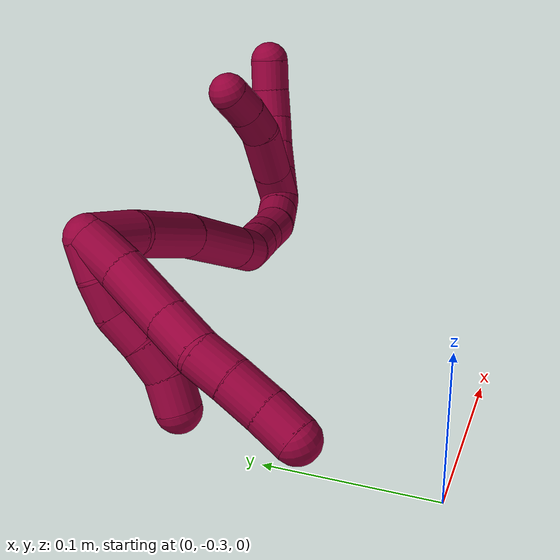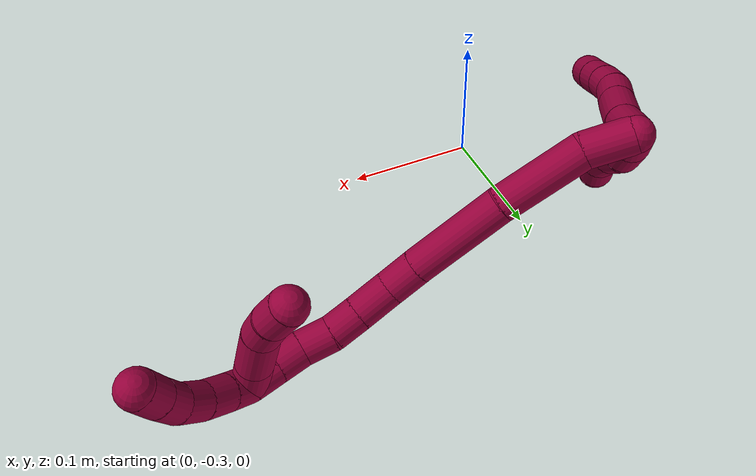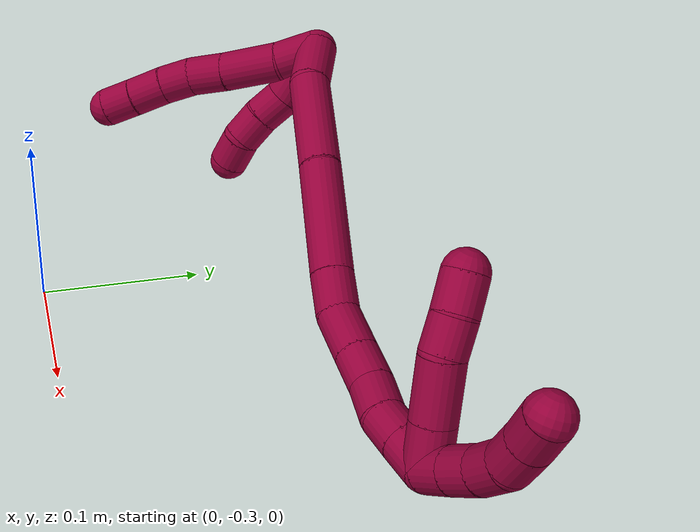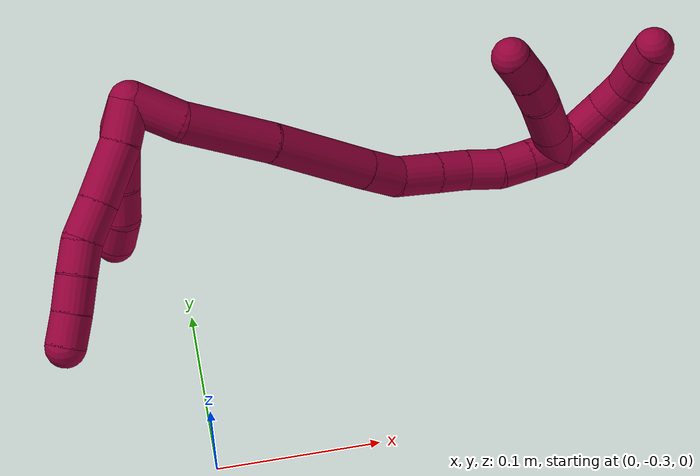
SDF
<sdf version="1.7">
 <world name="default">
  <model name="8">
   <static>0</static>
   <link name="8">
    <collision name="collision-cylinder-e_1_2_8">
     <pose>-0.006758 -0.007905 -0.007245 2.31271 -0.562379 -1.16197</pose>
     <geometry><cylinder><radius>0.0125</radius><length>0.02535</length></cylinder></geometry>
     <surface>
      <friction><ode><mu>1.16</mu><mu2>1.16</mu2><slip1>0</slip1><slip2>0</slip2></ode></friction>
      <contact><ode><kp>1e+06</kp><kd>1</kd><max_vel>0</max_vel><min_depth>0.001</min_depth></ode></contact>
     </surface>
    </collision>
    <visual name="visual-cylinder-e_1_2_8">
     <pose>-0.006758 -0.007905 -0.007245 2.31271 -0.562379 -1.16197</pose>
     <geometry><cylinder><radius>0.0125</radius><length>0.02535</length></cylinder></geometry>
     <material><ambient>0.584314 0 0.227451 1</ambient></material>
    </visual>
    <collision name="collision-cylinder-e_2_8_9">
     <pose>-0.025876 -0.026716 -0.023385 2.25489 -0.720658 -1.34143</pose>
     <geometry><cylinder><radius>0.0125</radius><length>0.037461</length></cylinder></geometry>
     <surface>
      <friction><ode><mu>1.16</mu><mu2>1.16</mu2><slip1>0</slip1><slip2>0</slip2></ode></friction>
      <contact><ode><kp>1e+06</kp><kd>1</kd><max_vel>0</max_vel><min_depth>0.001</min_depth></ode></contact>
     </surface>
    </collision>
    <visual name="visual-cylinder-e_2_8_9">
     <pose>-0.025876 -0.026716 -0.023385 2.25489 -0.720658 -1.34143</pose>
     <geometry><cylinder><radius>0.0125</radius><length>0.037461</length></cylinder></geometry>
     <material><ambient>0.584314 0 0.227451 1</ambient></material>
    </visual>
    <collision name="collision-cylinder-e_3_9_10">
     <pose>-0.046573 -0.044836 -0.037532 2.2003 -0.751439 -1.319</pose>
     <geometry><cylinder><radius>0.0125</radius><length>0.024423</length></cylinder></geometry>
     <surface>
      <friction><ode><mu>1.16</mu><mu2>1.16</mu2><slip1>0</slip1><slip2>0</slip2></ode></friction>
      <contact><ode><kp>1e+06</kp><kd>1</kd><max_vel>0</max_vel><min_depth>0.001</min_depth></ode></contact>
     </surface>
    </collision>
    <visual name="visual-cylinder-e_3_9_10">
     <pose>-0.046573 -0.044836 -0.037532 2.2003 -0.751439 -1.319</pose>
     <geometry><cylinder><radius>0.0125</radius><length>0.024423</length></cylinder></geometry>
     <material><ambient>0.584314 0 0.227451 1</ambient></material>
    </visual>
    <collision name="collision-cylinder-e_4_10_11">
     <pose>-0.059929 -0.05889 -0.048499 2.26655 -0.512824 -1.02176</pose>
     <geometry><cylinder><radius>0.0125</radius><length>0.02046</length></cylinder></geometry>
     <surface>
      <friction><ode><mu>1.16</mu><mu2>1.16</mu2><slip1>0</slip1><slip2>0</slip2></ode></friction>
      <contact><ode><kp>1e+06</kp><kd>1</kd><max_vel>0</max_vel><min_depth>0.001</min_depth></ode></contact>
     </surface>
    </collision>
    <visual name="visual-cylinder-e_4_10_11">
     <pose>-0.059929 -0.05889 -0.048499 2.26655 -0.512824 -1.02176</pose>
     <geometry><cylinder><radius>0.0125</radius><length>0.02046</length></cylinder></geometry>
     <material><ambient>0.584314 0 0.227451 1</ambient></material>
    </visual>
    <collision name="collision-cylinder-e_5_11_12">
     <pose>-0.070052 -0.072687 -0.061065 2.34877 -0.481702 -1.06132</pose>
     <geometry><cylinder><radius>0.0125</radius><length>0.022034</length></cylinder></geometry>
     <surface>
      <friction><ode><mu>1.16</mu><mu2>1.16</mu2><slip1>0</slip1><slip2>0</slip2></ode></friction>
      <contact><ode><kp>1e+06</kp><kd>1</kd><max_vel>0</max_vel><min_depth>0.001</min_depth></ode></contact>
     </surface>
    </collision>
    <visual name="visual-cylinder-e_5_11_12">
     <pose>-0.070052 -0.072687 -0.061065 2.34877 -0.481702 -1.06132</pose>
     <geometry><cylinder><radius>0.0125</radius><length>0.022034</length></cylinder></geometry>
     <material><ambient>0.584314 0 0.227451 1</ambient></material>
    </visual>
    <collision name="collision-cylinder-e_6_12_6">
     <pose>-0.080315 -0.085802 -0.074096 2.35772 -0.534008 -1.16925</pose>
     <geometry><cylinder><radius>0.0125</radius><length>0.020273</length></cylinder></geometry>
     <surface>
      <friction><ode><mu>1.16</mu><mu2>1.16</mu2><slip1>0</slip1><slip2>0</slip2></ode></friction>
      <contact><ode><kp>1e+06</kp><kd>1</kd><max_vel>0</max_vel><min_depth>0.001</min_depth></ode></contact>
     </surface>
    </collision>
    <visual name="visual-cylinder-e_6_12_6">
     <pose>-0.080315 -0.085802 -0.074096 2.35772 -0.534008 -1.16925</pose>
     <geometry><cylinder><radius>0.0125</radius><length>0.020273</length></cylinder></geometry>
     <material><ambient>0.584314 0 0.227451 1</ambient></material>
    </visual>
    <collision name="collision-cylinder-e_1_2_13">
     <pose>-0.004608 -0.000788 -0.00884 3.0527 -0.478851 -2.78115</pose>
     <geometry><cylinder><radius>0.0125</radius><length>0.02</length></cylinder></geometry>
     <surface>
      <friction><ode><mu>1.16</mu><mu2>1.16</mu2><slip1>0</slip1><slip2>0</slip2></ode></friction>
      <contact><ode><kp>1e+06</kp><kd>1</kd><max_vel>0</max_vel><min_depth>0.001</min_depth></ode></contact>
     </surface>
    </collision>
    <visual name="visual-cylinder-e_1_2_13">
     <pose>-0.004608 -0.000788 -0.00884 3.0527 -0.478851 -2.78115</pose>
     <geometry><cylinder><radius>0.0125</radius><length>0.02</length></cylinder></geometry>
     <material><ambient>0.584314 0 0.227451 1</ambient></material>
    </visual>
    <collision name="collision-cylinder-e_2_13_14">
     <pose>-0.012204 -0.002881 -0.027134 3.00441 -0.303514 -2.29717</pose>
     <geometry><cylinder><radius>0.0125</radius><length>0.02</length></cylinder></geometry>
     <surface>
      <friction><ode><mu>1.16</mu><mu2>1.16</mu2><slip1>0</slip1><slip2>0</slip2></ode></friction>
      <contact><ode><kp>1e+06</kp><kd>1</kd><max_vel>0</max_vel><min_depth>0.001</min_depth></ode></contact>
     </surface>
    </collision>
    <visual name="visual-cylinder-e_2_13_14">
     <pose>-0.012204 -0.002881 -0.027134 3.00441 -0.303514 -2.29717</pose>
     <geometry><cylinder><radius>0.0125</radius><length>0.02</length></cylinder></geometry>
     <material><ambient>0.584314 0 0.227451 1</ambient></material>
    </visual>
    <collision name="collision-cylinder-e_3_14_15">
     <pose>-0.018313 -0.008645 -0.044976 2.65304 -0.317298 -1.14131</pose>
     <geometry><cylinder><radius>0.0125</radius><length>0.02</length></cylinder></geometry>
     <surface>
      <friction><ode><mu>1.16</mu><mu2>1.16</mu2><slip1>0</slip1><slip2>0</slip2></ode></friction>
      <contact><ode><kp>1e+06</kp><kd>1</kd><max_vel>0</max_vel><min_depth>0.001</min_depth></ode></contact>
     </surface>
    </collision>
    <visual name="visual-cylinder-e_3_14_15">
     <pose>-0.018313 -0.008645 -0.044976 2.65304 -0.317298 -1.14131</pose>
     <geometry><cylinder><radius>0.0125</radius><length>0.02</length></cylinder></geometry>
     <material><ambient>0.584314 0 0.227451 1</ambient></material>
    </visual>
    <collision name="collision-cylinder-e_4_15_16">
     <pose>-0.02406 -0.016355 -0.06245 2.79795 -0.265894 -1.3132</pose>
     <geometry><cylinder><radius>0.0125</radius><length>0.02</length></cylinder></geometry>
     <surface>
      <friction><ode><mu>1.16</mu><mu2>1.16</mu2><slip1>0</slip1><slip2>0</slip2></ode></friction>
      <contact><ode><kp>1e+06</kp><kd>1</kd><max_vel>0</max_vel><min_depth>0.001</min_depth></ode></contact>
     </surface>
    </collision>
    <visual name="visual-cylinder-e_4_15_16">
     <pose>-0.02406 -0.016355 -0.06245 2.79795 -0.265894 -1.3132</pose>
     <geometry><cylinder><radius>0.0125</radius><length>0.02</length></cylinder></geometry>
     <material><ambient>0.584314 0 0.227451 1</ambient></material>
    </visual>
    <collision name="collision-cylinder-e_5_16_5">
     <pose>-0.03045 -0.01975 -0.080799 3.12604 -0.385639 -3.06197</pose>
     <geometry><cylinder><radius>0.0125</radius><length>0.02</length></cylinder></geometry>
     <surface>
      <friction><ode><mu>1.16</mu><mu2>1.16</mu2><slip1>0</slip1><slip2>0</slip2></ode></friction>
      <contact><ode><kp>1e+06</kp><kd>1</kd><max_vel>0</max_vel><min_depth>0.001</min_depth></ode></contact>
     </surface>
    </collision>
    <visual name="visual-cylinder-e_5_16_5">
     <pose>-0.03045 -0.01975 -0.080799 3.12604 -0.385639 -3.06197</pose>
     <geometry><cylinder><radius>0.0125</radius><length>0.02</length></cylinder></geometry>
     <material><ambient>0.584314 0 0.227451 1</ambient></material>
    </visual>
    <collision name="collision-cylinder-e_1_2_17">
     <pose>0.012148 -0.006296 -0.009168 2.53981 0.829452 1.91366</pose>
     <geometry><cylinder><radius>0.0125</radius><length>0.032941</length></cylinder></geometry>
     <surface>
      <friction><ode><mu>1.16</mu><mu2>1.16</mu2><slip1>0</slip1><slip2>0</slip2></ode></friction>
      <contact><ode><kp>1e+06</kp><kd>1</kd><max_vel>0</max_vel><min_depth>0.001</min_depth></ode></contact>
     </surface>
    </collision>
    <visual name="visual-cylinder-e_1_2_17">
     <pose>0.012148 -0.006296 -0.009168 2.53981 0.829452 1.91366</pose>
     <geometry><cylinder><radius>0.0125</radius><length>0.032941</length></cylinder></geometry>
     <material><ambient>0.584314 0 0.227451 1</ambient></material>
    </visual>
    <collision name="collision-cylinder-e_2_17_18">
     <pose>0.048611 -0.015825 -0.037407 2.9737 0.898823 2.79616</pose>
     <geometry><cylinder><radius>0.0125</radius><length>0.06214</length></cylinder></geometry>
     <surface>
      <friction><ode><mu>1.16</mu><mu2>1.16</mu2><slip1>0</slip1><slip2>0</slip2></ode></friction>
      <contact><ode><kp>1e+06</kp><kd>1</kd><max_vel>0</max_vel><min_depth>0.001</min_depth></ode></contact>
     </surface>
    </collision>
    <visual name="visual-cylinder-e_2_17_18">
     <pose>0.048611 -0.015825 -0.037407 2.9737 0.898823 2.79616</pose>
     <geometry><cylinder><radius>0.0125</radius><length>0.06214</length></cylinder></geometry>
     <material><ambient>0.584314 0 0.227451 1</ambient></material>
    </visual>
    <collision name="collision-cylinder-e_3_18_19">
     <pose>0.098449 -0.02124 -0.079994 3.04904 0.824127 2.93048</pose>
     <geometry><cylinder><radius>0.0125</radius><length>0.069548</length></cylinder></geometry>
     <surface>
      <friction><ode><mu>1.16</mu><mu2>1.16</mu2><slip1>0</slip1><slip2>0</slip2></ode></friction>
      <contact><ode><kp>1e+06</kp><kd>1</kd><max_vel>0</max_vel><min_depth>0.001</min_depth></ode></contact>
     </surface>
    </collision>
    <visual name="visual-cylinder-e_3_18_19">
     <pose>0.098449 -0.02124 -0.079994 3.04904 0.824127 2.93048</pose>
     <geometry><cylinder><radius>0.0125</radius><length>0.069548</length></cylinder></geometry>
     <material><ambient>0.584314 0 0.227451 1</ambient></material>
    </visual>
    <collision name="collision-cylinder-e_4_19_20">
     <pose>0.132953 -0.023766 -0.111586 3.09917 0.838065 3.04639</pose>
     <geometry><cylinder><radius>0.0125</radius><length>0.024165</length></cylinder></geometry>
     <surface>
      <friction><ode><mu>1.16</mu><mu2>1.16</mu2><slip1>0</slip1><slip2>0</slip2></ode></friction>
      <contact><ode><kp>1e+06</kp><kd>1</kd><max_vel>0</max_vel><min_depth>0.001</min_depth></ode></contact>
     </surface>
    </collision>
    <visual name="visual-cylinder-e_4_19_20">
     <pose>0.132953 -0.023766 -0.111586 3.09917 0.838065 3.04639</pose>
     <geometry><cylinder><radius>0.0125</radius><length>0.024165</length></cylinder></geometry>
     <material><ambient>0.584314 0 0.227451 1</ambient></material>
    </visual>
    <collision name="collision-cylinder-e_5_20_21">
     <pose>0.154296 -0.023244 -0.125431 -2.99281 1.12981 -2.90749</pose>
     <geometry><cylinder><radius>0.0125</radius><length>0.027339</length></cylinder></geometry>
     <surface>
      <friction><ode><mu>1.16</mu><mu2>1.16</mu2><slip1>0</slip1><slip2>0</slip2></ode></friction>
      <contact><ode><kp>1e+06</kp><kd>1</kd><max_vel>0</max_vel><min_depth>0.001</min_depth></ode></contact>
     </surface>
    </collision>
    <visual name="visual-cylinder-e_5_20_21">
     <pose>0.154296 -0.023244 -0.125431 -2.99281 1.12981 -2.90749</pose>
     <geometry><cylinder><radius>0.0125</radius><length>0.027339</length></cylinder></geometry>
     <material><ambient>0.584314 0 0.227451 1</ambient></material>
    </visual>
    <collision name="collision-cylinder-e_6_21_22">
     <pose>0.176395 -0.021847 -0.135458 -3.01739 1.15575 -2.95147</pose>
     <geometry><cylinder><radius>0.0125</radius><length>0.02128</length></cylinder></geometry>
     <surface>
      <friction><ode><mu>1.16</mu><mu2>1.16</mu2><slip1>0</slip1><slip2>0</slip2></ode></friction>
      <contact><ode><kp>1e+06</kp><kd>1</kd><max_vel>0</max_vel><min_depth>0.001</min_depth></ode></contact>
     </surface>
    </collision>
    <visual name="visual-cylinder-e_6_21_22">
     <pose>0.176395 -0.021847 -0.135458 -3.01739 1.15575 -2.95147</pose>
     <geometry><cylinder><radius>0.0125</radius><length>0.02128</length></cylinder></geometry>
     <material><ambient>0.584314 0 0.227451 1</ambient></material>
    </visual>
    <collision name="collision-cylinder-e_7_22_23">
     <pose>0.196583 -0.022779 -0.143356 2.75939 1.21165 2.59691</pose>
     <geometry><cylinder><radius>0.0125</radius><length>0.022327</length></cylinder></geometry>
     <surface>
      <friction><ode><mu>1.16</mu><mu2>1.16</mu2><slip1>0</slip1><slip2>0</slip2></ode></friction>
      <contact><ode><kp>1e+06</kp><kd>1</kd><max_vel>0</max_vel><min_depth>0.001</min_depth></ode></contact>
     </surface>
    </collision>
    <visual name="visual-cylinder-e_7_22_23">
     <pose>0.196583 -0.022779 -0.143356 2.75939 1.21165 2.59691</pose>
     <geometry><cylinder><radius>0.0125</radius><length>0.022327</length></cylinder></geometry>
     <material><ambient>0.584314 0 0.227451 1</ambient></material>
    </visual>
    <collision name="collision-cylinder-e_8_23_24">
     <pose>0.216971 -0.023622 -0.148511 -2.75254 1.40759 -2.68544</pose>
     <geometry><cylinder><radius>0.0125</radius><length>0.020142</length></cylinder></geometry>
     <surface>
      <friction><ode><mu>1.16</mu><mu2>1.16</mu2><slip1>0</slip1><slip2>0</slip2></ode></friction>
      <contact><ode><kp>1e+06</kp><kd>1</kd><max_vel>0</max_vel><min_depth>0.001</min_depth></ode></contact>
     </surface>
    </collision>
    <visual name="visual-cylinder-e_8_23_24">
     <pose>0.216971 -0.023622 -0.148511 -2.75254 1.40759 -2.68544</pose>
     <geometry><cylinder><radius>0.0125</radius><length>0.020142</length></cylinder></geometry>
     <material><ambient>0.584314 0 0.227451 1</ambient></material>
    </visual>
    <collision name="collision-cylinder-e_9_24_1">
     <pose>0.236851 -0.022286 -0.151375 -2.65447 1.4184 -2.57787</pose>
     <geometry><cylinder><radius>0.0125</radius><length>0.020118</length></cylinder></geometry>
     <surface>
      <friction><ode><mu>1.16</mu><mu2>1.16</mu2><slip1>0</slip1><slip2>0</slip2></ode></friction>
      <contact><ode><kp>1e+06</kp><kd>1</kd><max_vel>0</max_vel><min_depth>0.001</min_depth></ode></contact>
     </surface>
    </collision>
    <visual name="visual-cylinder-e_9_24_1">
     <pose>0.236851 -0.022286 -0.151375 -2.65447 1.4184 -2.57787</pose>
     <geometry><cylinder><radius>0.0125</radius><length>0.020118</length></cylinder></geometry>
     <material><ambient>0.584314 0 0.227451 1</ambient></material>
    </visual>
    <collision name="collision-cylinder-e_1_1_25">
     <pose>0.244944 -0.023112 -0.140505 0.125384 -0.149044 -0.009373</pose>
     <geometry><cylinder><radius>0.0125</radius><length>0.024908</length></cylinder></geometry>
     <surface>
      <friction><ode><mu>1.16</mu><mu2>1.16</mu2><slip1>0</slip1><slip2>0</slip2></ode></friction>
      <contact><ode><kp>1e+06</kp><kd>1</kd><max_vel>0</max_vel><min_depth>0.001</min_depth></ode></contact>
     </surface>
    </collision>
    <visual name="visual-cylinder-e_1_1_25">
     <pose>0.244944 -0.023112 -0.140505 0.125384 -0.149044 -0.009373</pose>
     <geometry><cylinder><radius>0.0125</radius><length>0.024908</length></cylinder></geometry>
     <material><ambient>0.584314 0 0.227451 1</ambient></material>
    </visual>
    <collision name="collision-cylinder-e_2_25_26">
     <pose>0.2406 -0.026742 -0.111752 0.125721 -0.148546 -0.009367</pose>
     <geometry><cylinder><radius>0.0125</radius><length>0.033702</length></cylinder></geometry>
     <surface>
      <friction><ode><mu>1.16</mu><mu2>1.16</mu2><slip1>0</slip1><slip2>0</slip2></ode></friction>
      <contact><ode><kp>1e+06</kp><kd>1</kd><max_vel>0</max_vel><min_depth>0.001</min_depth></ode></contact>
     </surface>
    </collision>
    <visual name="visual-cylinder-e_2_25_26">
     <pose>0.2406 -0.026742 -0.111752 0.125721 -0.148546 -0.009367</pose>
     <geometry><cylinder><radius>0.0125</radius><length>0.033702</length></cylinder></geometry>
     <material><ambient>0.584314 0 0.227451 1</ambient></material>
    </visual>
    <collision name="collision-cylinder-e_3_26_27">
     <pose>0.236088 -0.027679 -0.085472 -0.117726 -0.202863 0.011996</pose>
     <geometry><cylinder><radius>0.0125</radius><length>0.020039</length></cylinder></geometry>
     <surface>
      <friction><ode><mu>1.16</mu><mu2>1.16</mu2><slip1>0</slip1><slip2>0</slip2></ode></friction>
      <contact><ode><kp>1e+06</kp><kd>1</kd><max_vel>0</max_vel><min_depth>0.001</min_depth></ode></contact>
     </surface>
    </collision>
    <visual name="visual-cylinder-e_3_26_27">
     <pose>0.236088 -0.027679 -0.085472 -0.117726 -0.202863 0.011996</pose>
     <geometry><cylinder><radius>0.0125</radius><length>0.020039</length></cylinder></geometry>
     <material><ambient>0.584314 0 0.227451 1</ambient></material>
    </visual>
    <collision name="collision-cylinder-e_4_27_4">
     <pose>0.230511 -0.024643 -0.065838 -0.188157 -0.339795 0.032371</pose>
     <geometry><cylinder><radius>0.0125</radius><length>0.021351</length></cylinder></geometry>
     <surface>
      <friction><ode><mu>1.16</mu><mu2>1.16</mu2><slip1>0</slip1><slip2>0</slip2></ode></friction>
      <contact><ode><kp>1e+06</kp><kd>1</kd><max_vel>0</max_vel><min_depth>0.001</min_depth></ode></contact>
     </surface>
    </collision>
    <visual name="visual-cylinder-e_4_27_4">
     <pose>0.230511 -0.024643 -0.065838 -0.188157 -0.339795 0.032371</pose>
     <geometry><cylinder><radius>0.0125</radius><length>0.021351</length></cylinder></geometry>
     <material><ambient>0.584314 0 0.227451 1</ambient></material>
    </visual>
    <collision name="collision-cylinder-e_1_1_28">
     <pose>0.255423 -0.021243 -0.147682 -0.065098 1.04111 -0.03733</pose>
     <geometry><cylinder><radius>0.0125</radius><length>0.02</length></cylinder></geometry>
     <surface>
      <friction><ode><mu>1.16</mu><mu2>1.16</mu2><slip1>0</slip1><slip2>0</slip2></ode></friction>
      <contact><ode><kp>1e+06</kp><kd>1</kd><max_vel>0</max_vel><min_depth>0.001</min_depth></ode></contact>
     </surface>
    </collision>
    <visual name="visual-cylinder-e_1_1_28">
     <pose>0.255423 -0.021243 -0.147682 -0.065098 1.04111 -0.03733</pose>
     <geometry><cylinder><radius>0.0125</radius><length>0.02</length></cylinder></geometry>
     <material><ambient>0.584314 0 0.227451 1</ambient></material>
    </visual>
    <collision name="collision-cylinder-e_2_28_29">
     <pose>0.272455 -0.020826 -0.137219 -0.016229 0.997709 -0.008842</pose>
     <geometry><cylinder><radius>0.0125</radius><length>0.02</length></cylinder></geometry>
     <surface>
      <friction><ode><mu>1.16</mu><mu2>1.16</mu2><slip1>0</slip1><slip2>0</slip2></ode></friction>
      <contact><ode><kp>1e+06</kp><kd>1</kd><max_vel>0</max_vel><min_depth>0.001</min_depth></ode></contact>
     </surface>
    </collision>
    <visual name="visual-cylinder-e_2_28_29">
     <pose>0.272455 -0.020826 -0.137219 -0.016229 0.997709 -0.008842</pose>
     <geometry><cylinder><radius>0.0125</radius><length>0.02</length></cylinder></geometry>
     <material><ambient>0.584314 0 0.227451 1</ambient></material>
    </visual>
    <collision name="collision-cylinder-e_3_29_30">
     <pose>0.288367 -0.021632 -0.125254 0.135758 0.849526 0.061478</pose>
     <geometry><cylinder><radius>0.0125</radius><length>0.02</length></cylinder></geometry>
     <surface>
      <friction><ode><mu>1.16</mu><mu2>1.16</mu2><slip1>0</slip1><slip2>0</slip2></ode></friction>
      <contact><ode><kp>1e+06</kp><kd>1</kd><max_vel>0</max_vel><min_depth>0.001</min_depth></ode></contact>
     </surface>
    </collision>
    <visual name="visual-cylinder-e_3_29_30">
     <pose>0.288367 -0.021632 -0.125254 0.135758 0.849526 0.061478</pose>
     <geometry><cylinder><radius>0.0125</radius><length>0.02</length></cylinder></geometry>
     <material><ambient>0.584314 0 0.227451 1</ambient></material>
    </visual>
    <collision name="collision-cylinder-e_4_30_31">
     <pose>0.300787 -0.024182 -0.11016 0.191296 0.51336 0.050353</pose>
     <geometry><cylinder><radius>0.0125</radius><length>0.02</length></cylinder></geometry>
     <surface>
      <friction><ode><mu>1.16</mu><mu2>1.16</mu2><slip1>0</slip1><slip2>0</slip2></ode></friction>
      <contact><ode><kp>1e+06</kp><kd>1</kd><max_vel>0</max_vel><min_depth>0.001</min_depth></ode></contact>
     </surface>
    </collision>
    <visual name="visual-cylinder-e_4_30_31">
     <pose>0.300787 -0.024182 -0.11016 0.191296 0.51336 0.050353</pose>
     <geometry><cylinder><radius>0.0125</radius><length>0.02</length></cylinder></geometry>
     <material><ambient>0.584314 0 0.227451 1</ambient></material>
    </visual>
    <collision name="collision-cylinder-e_5_31_3">
     <pose>0.310203 -0.027965 -0.092937 0.240479 0.467322 0.057498</pose>
     <geometry><cylinder><radius>0.0125</radius><length>0.02</length></cylinder></geometry>
     <surface>
      <friction><ode><mu>1.16</mu><mu2>1.16</mu2><slip1>0</slip1><slip2>0</slip2></ode></friction>
      <contact><ode><kp>1e+06</kp><kd>1</kd><max_vel>0</max_vel><min_depth>0.001</min_depth></ode></contact>
     </surface>
    </collision>
    <visual name="visual-cylinder-e_5_31_3">
     <pose>0.310203 -0.027965 -0.092937 0.240479 0.467322 0.057498</pose>
     <geometry><cylinder><radius>0.0125</radius><length>0.02</length></cylinder></geometry>
     <material><ambient>0.584314 0 0.227451 1</ambient></material>
    </visual>
    <collision name="collision-sphere-3">
     <pose>0.314708 -0.030091 -0.084266 0 -0 0</pose>
     <geometry><sphere><radius>0.0125</radius></sphere></geometry>
     <surface>
      <friction><ode><mu>1.16</mu><mu2>1.16</mu2><slip1>0</slip1><slip2>0</slip2></ode></friction>
      <contact><ode><kp>1e+06</kp><kd>1</kd><max_vel>0</max_vel><min_depth>0.001</min_depth></ode></contact>
     </surface>
    </collision>
    <visual name="visual-sphere-3">
     <pose>0.314708 -0.030091 -0.084266 0 -0 0</pose>
     <geometry><sphere><radius>0.0125</radius></sphere></geometry>
     <material><ambient>0.584314 0 0.227451 1</ambient></material>
    </visual>
    <collision name="collision-sphere-31">
     <pose>0.305698 -0.025838 -0.101608 0 -0 0</pose>
     <geometry><sphere><radius>0.0125</radius></sphere></geometry>
     <surface>
      <friction><ode><mu>1.16</mu><mu2>1.16</mu2><slip1>0</slip1><slip2>0</slip2></ode></friction>
      <contact><ode><kp>1e+06</kp><kd>1</kd><max_vel>0</max_vel><min_depth>0.001</min_depth></ode></contact>
     </surface>
    </collision>
    <visual name="visual-sphere-31">
     <pose>0.305698 -0.025838 -0.101608 0 -0 0</pose>
     <geometry><sphere><radius>0.0125</radius></sphere></geometry>
     <material><ambient>0.584314 0 0.227451 1</ambient></material>
    </visual>
    <collision name="collision-sphere-30">
     <pose>0.295876 -0.022526 -0.118712 0 -0 0</pose>
     <geometry><sphere><radius>0.0125</radius></sphere></geometry>
     <surface>
      <friction><ode><mu>1.16</mu><mu2>1.16</mu2><slip1>0</slip1><slip2>0</slip2></ode></friction>
      <contact><ode><kp>1e+06</kp><kd>1</kd><max_vel>0</max_vel><min_depth>0.001</min_depth></ode></contact>
     </surface>
    </collision>
    <visual name="visual-sphere-30">
     <pose>0.295876 -0.022526 -0.118712 0 -0 0</pose>
     <geometry><sphere><radius>0.0125</radius></sphere></geometry>
     <material><ambient>0.584314 0 0.227451 1</ambient></material>
    </visual>
    <collision name="collision-sphere-29">
     <pose>0.280857 -0.020738 -0.131797 0 -0 0</pose>
     <geometry><sphere><radius>0.0125</radius></sphere></geometry>
     <surface>
      <friction><ode><mu>1.16</mu><mu2>1.16</mu2><slip1>0</slip1><slip2>0</slip2></ode></friction>
      <contact><ode><kp>1e+06</kp><kd>1</kd><max_vel>0</max_vel><min_depth>0.001</min_depth></ode></contact>
     </surface>
    </collision>
    <visual name="visual-sphere-29">
     <pose>0.280857 -0.020738 -0.131797 0 -0 0</pose>
     <geometry><sphere><radius>0.0125</radius></sphere></geometry>
     <material><ambient>0.584314 0 0.227451 1</ambient></material>
    </visual>
    <collision name="collision-sphere-28">
     <pose>0.264052 -0.020914 -0.14264 0 -0 0</pose>
     <geometry><sphere><radius>0.0125</radius></sphere></geometry>
     <surface>
      <friction><ode><mu>1.16</mu><mu2>1.16</mu2><slip1>0</slip1><slip2>0</slip2></ode></friction>
      <contact><ode><kp>1e+06</kp><kd>1</kd><max_vel>0</max_vel><min_depth>0.001</min_depth></ode></contact>
     </surface>
    </collision>
    <visual name="visual-sphere-28">
     <pose>0.264052 -0.020914 -0.14264 0 -0 0</pose>
     <geometry><sphere><radius>0.0125</radius></sphere></geometry>
     <material><ambient>0.584314 0 0.227451 1</ambient></material>
    </visual>
    <collision name="collision-sphere-4">
     <pose>0.226953 -0.022761 -0.055951 0 -0 0</pose>
     <geometry><sphere><radius>0.0125</radius></sphere></geometry>
     <surface>
      <friction><ode><mu>1.16</mu><mu2>1.16</mu2><slip1>0</slip1><slip2>0</slip2></ode></friction>
      <contact><ode><kp>1e+06</kp><kd>1</kd><max_vel>0</max_vel><min_depth>0.001</min_depth></ode></contact>
     </surface>
    </collision>
    <visual name="visual-sphere-4">
     <pose>0.226953 -0.022761 -0.055951 0 -0 0</pose>
     <geometry><sphere><radius>0.0125</radius></sphere></geometry>
     <material><ambient>0.584314 0 0.227451 1</ambient></material>
    </visual>
    <collision name="collision-sphere-27">
     <pose>0.234069 -0.026526 -0.075726 0 -0 0</pose>
     <geometry><sphere><radius>0.0125</radius></sphere></geometry>
     <surface>
      <friction><ode><mu>1.16</mu><mu2>1.16</mu2><slip1>0</slip1><slip2>0</slip2></ode></friction>
      <contact><ode><kp>1e+06</kp><kd>1</kd><max_vel>0</max_vel><min_depth>0.001</min_depth></ode></contact>
     </surface>
    </collision>
    <visual name="visual-sphere-27">
     <pose>0.234069 -0.026526 -0.075726 0 -0 0</pose>
     <geometry><sphere><radius>0.0125</radius></sphere></geometry>
     <material><ambient>0.584314 0 0.227451 1</ambient></material>
    </visual>
    <collision name="collision-sphere-26">
     <pose>0.238107 -0.028831 -0.095218 0 -0 0</pose>
     <geometry><sphere><radius>0.0125</radius></sphere></geometry>
     <surface>
      <friction><ode><mu>1.16</mu><mu2>1.16</mu2><slip1>0</slip1><slip2>0</slip2></ode></friction>
      <contact><ode><kp>1e+06</kp><kd>1</kd><max_vel>0</max_vel><min_depth>0.001</min_depth></ode></contact>
     </surface>
    </collision>
    <visual name="visual-sphere-26">
     <pose>0.238107 -0.028831 -0.095218 0 -0 0</pose>
     <geometry><sphere><radius>0.0125</radius></sphere></geometry>
     <material><ambient>0.584314 0 0.227451 1</ambient></material>
    </visual>
    <collision name="collision-sphere-25">
     <pose>0.243094 -0.024652 -0.128286 0 -0 0</pose>
     <geometry><sphere><radius>0.0125</radius></sphere></geometry>
     <surface>
      <friction><ode><mu>1.16</mu><mu2>1.16</mu2><slip1>0</slip1><slip2>0</slip2></ode></friction>
      <contact><ode><kp>1e+06</kp><kd>1</kd><max_vel>0</max_vel><min_depth>0.001</min_depth></ode></contact>
     </surface>
    </collision>
    <visual name="visual-sphere-25">
     <pose>0.243094 -0.024652 -0.128286 0 -0 0</pose>
     <geometry><sphere><radius>0.0125</radius></sphere></geometry>
     <material><ambient>0.584314 0 0.227451 1</ambient></material>
    </visual>
    <collision name="collision-sphere-1">
     <pose>0.246793 -0.021572 -0.152724 0 -0 0</pose>
     <geometry><sphere><radius>0.0125</radius></sphere></geometry>
     <surface>
      <friction><ode><mu>1.16</mu><mu2>1.16</mu2><slip1>0</slip1><slip2>0</slip2></ode></friction>
      <contact><ode><kp>1e+06</kp><kd>1</kd><max_vel>0</max_vel><min_depth>0.001</min_depth></ode></contact>
     </surface>
    </collision>
    <visual name="visual-sphere-1">
     <pose>0.246793 -0.021572 -0.152724 0 -0 0</pose>
     <geometry><sphere><radius>0.0125</radius></sphere></geometry>
     <material><ambient>0.584314 0 0.227451 1</ambient></material>
    </visual>
    <collision name="collision-sphere-24">
     <pose>0.226909 -0.023001 -0.150025 0 -0 0</pose>
     <geometry><sphere><radius>0.0125</radius></sphere></geometry>
     <surface>
      <friction><ode><mu>1.16</mu><mu2>1.16</mu2><slip1>0</slip1><slip2>0</slip2></ode></friction>
      <contact><ode><kp>1e+06</kp><kd>1</kd><max_vel>0</max_vel><min_depth>0.001</min_depth></ode></contact>
     </surface>
    </collision>
    <visual name="visual-sphere-24">
     <pose>0.226909 -0.023001 -0.150025 0 -0 0</pose>
     <geometry><sphere><radius>0.0125</radius></sphere></geometry>
     <material><ambient>0.584314 0 0.227451 1</ambient></material>
    </visual>
    <collision name="collision-sphere-23">
     <pose>0.207034 -0.024243 -0.146997 0 -0 0</pose>
     <geometry><sphere><radius>0.0125</radius></sphere></geometry>
     <surface>
      <friction><ode><mu>1.16</mu><mu2>1.16</mu2><slip1>0</slip1><slip2>0</slip2></ode></friction>
      <contact><ode><kp>1e+06</kp><kd>1</kd><max_vel>0</max_vel><min_depth>0.001</min_depth></ode></contact>
     </surface>
    </collision>
    <visual name="visual-sphere-23">
     <pose>0.207034 -0.024243 -0.146997 0 -0 0</pose>
     <geometry><sphere><radius>0.0125</radius></sphere></geometry>
     <material><ambient>0.584314 0 0.227451 1</ambient></material>
    </visual>
    <collision name="collision-sphere-22">
     <pose>0.186131 -0.021316 -0.139716 0 -0 0</pose>
     <geometry><sphere><radius>0.0125</radius></sphere></geometry>
     <surface>
      <friction><ode><mu>1.16</mu><mu2>1.16</mu2><slip1>0</slip1><slip2>0</slip2></ode></friction>
      <contact><ode><kp>1e+06</kp><kd>1</kd><max_vel>0</max_vel><min_depth>0.001</min_depth></ode></contact>
     </surface>
    </collision>
    <visual name="visual-sphere-22">
     <pose>0.186131 -0.021316 -0.139716 0 -0 0</pose>
     <geometry><sphere><radius>0.0125</radius></sphere></geometry>
     <material><ambient>0.584314 0 0.227451 1</ambient></material>
    </visual>
    <collision name="collision-sphere-21">
     <pose>0.166658 -0.022379 -0.131201 0 -0 0</pose>
     <geometry><sphere><radius>0.0125</radius></sphere></geometry>
     <surface>
      <friction><ode><mu>1.16</mu><mu2>1.16</mu2><slip1>0</slip1><slip2>0</slip2></ode></friction>
      <contact><ode><kp>1e+06</kp><kd>1</kd><max_vel>0</max_vel><min_depth>0.001</min_depth></ode></contact>
     </surface>
    </collision>
    <visual name="visual-sphere-21">
     <pose>0.166658 -0.022379 -0.131201 0 -0 0</pose>
     <geometry><sphere><radius>0.0125</radius></sphere></geometry>
     <material><ambient>0.584314 0 0.227451 1</ambient></material>
    </visual>
    <collision name="collision-sphere-12">
     <pose>-0.075156 -0.079642 -0.067917 0 -0 0</pose>
     <geometry><sphere><radius>0.0125</radius></sphere></geometry>
     <surface>
      <friction><ode><mu>1.16</mu><mu2>1.16</mu2><slip1>0</slip1><slip2>0</slip2></ode></friction>
      <contact><ode><kp>1e+06</kp><kd>1</kd><max_vel>0</max_vel><min_depth>0.001</min_depth></ode></contact>
     </surface>
    </collision>
    <visual name="visual-sphere-12">
     <pose>-0.075156 -0.079642 -0.067917 0 -0 0</pose>
     <geometry><sphere><radius>0.0125</radius></sphere></geometry>
     <material><ambient>0.584314 0 0.227451 1</ambient></material>
    </visual>
    <collision name="collision-sphere-11">
     <pose>-0.064948 -0.065732 -0.054213 0 -0 0</pose>
     <geometry><sphere><radius>0.0125</radius></sphere></geometry>
     <surface>
      <friction><ode><mu>1.16</mu><mu2>1.16</mu2><slip1>0</slip1><slip2>0</slip2></ode></friction>
      <contact><ode><kp>1e+06</kp><kd>1</kd><max_vel>0</max_vel><min_depth>0.001</min_depth></ode></contact>
     </surface>
    </collision>
    <visual name="visual-sphere-11">
     <pose>-0.064948 -0.065732 -0.054213 0 -0 0</pose>
     <geometry><sphere><radius>0.0125</radius></sphere></geometry>
     <material><ambient>0.584314 0 0.227451 1</ambient></material>
    </visual>
    <collision name="collision-sphere-10">
     <pose>-0.05491 -0.052048 -0.042786 0 -0 0</pose>
     <geometry><sphere><radius>0.0125</radius></sphere></geometry>
     <surface>
      <friction><ode><mu>1.16</mu><mu2>1.16</mu2><slip1>0</slip1><slip2>0</slip2></ode></friction>
      <contact><ode><kp>1e+06</kp><kd>1</kd><max_vel>0</max_vel><min_depth>0.001</min_depth></ode></contact>
     </surface>
    </collision>
    <visual name="visual-sphere-10">
     <pose>-0.05491 -0.052048 -0.042786 0 -0 0</pose>
     <geometry><sphere><radius>0.0125</radius></sphere></geometry>
     <material><ambient>0.584314 0 0.227451 1</ambient></material>
    </visual>
    <collision name="collision-sphere-9">
     <pose>-0.038236 -0.037623 -0.032279 0 -0 0</pose>
     <geometry><sphere><radius>0.0125</radius></sphere></geometry>
     <surface>
      <friction><ode><mu>1.16</mu><mu2>1.16</mu2><slip1>0</slip1><slip2>0</slip2></ode></friction>
      <contact><ode><kp>1e+06</kp><kd>1</kd><max_vel>0</max_vel><min_depth>0.001</min_depth></ode></contact>
     </surface>
    </collision>
    <visual name="visual-sphere-9">
     <pose>-0.038236 -0.037623 -0.032279 0 -0 0</pose>
     <geometry><sphere><radius>0.0125</radius></sphere></geometry>
     <material><ambient>0.584314 0 0.227451 1</ambient></material>
    </visual>
    <collision name="collision-sphere-2">
     <geometry><sphere><radius>0.0125</radius></sphere></geometry>
     <surface>
      <friction><ode><mu>1.16</mu><mu2>1.16</mu2><slip1>0</slip1><slip2>0</slip2></ode></friction>
      <contact><ode><kp>1e+06</kp><kd>1</kd><max_vel>0</max_vel><min_depth>0.001</min_depth></ode></contact>
     </surface>
    </collision>
    <visual name="visual-sphere-2">
     <geometry><sphere><radius>0.0125</radius></sphere></geometry>
     <material><ambient>0.584314 0 0.227451 1</ambient></material>
    </visual>
    <collision name="collision-sphere-19">
     <pose>0.123972 -0.023423 -0.103512 0 -0 0</pose>
     <geometry><sphere><radius>0.0125</radius></sphere></geometry>
     <surface>
      <friction><ode><mu>1.16</mu><mu2>1.16</mu2><slip1>0</slip1><slip2>0</slip2></ode></friction>
      <contact><ode><kp>1e+06</kp><kd>1</kd><max_vel>0</max_vel><min_depth>0.001</min_depth></ode></contact>
     </surface>
    </collision>
    <visual name="visual-sphere-19">
     <pose>0.123972 -0.023423 -0.103512 0 -0 0</pose>
     <geometry><sphere><radius>0.0125</radius></sphere></geometry>
     <material><ambient>0.584314 0 0.227451 1</ambient></material>
    </visual>
    <collision name="collision-sphere-8">
     <pose>-0.013517 -0.015809 -0.014491 0 -0 0</pose>
     <geometry><sphere><radius>0.0125</radius></sphere></geometry>
     <surface>
      <friction><ode><mu>1.16</mu><mu2>1.16</mu2><slip1>0</slip1><slip2>0</slip2></ode></friction>
      <contact><ode><kp>1e+06</kp><kd>1</kd><max_vel>0</max_vel><min_depth>0.001</min_depth></ode></contact>
     </surface>
    </collision>
    <visual name="visual-sphere-8">
     <pose>-0.013517 -0.015809 -0.014491 0 -0 0</pose>
     <geometry><sphere><radius>0.0125</radius></sphere></geometry>
     <material><ambient>0.584314 0 0.227451 1</ambient></material>
    </visual>
    <collision name="collision-sphere-6">
     <pose>-0.085474 -0.091962 -0.080275 0 -0 0</pose>
     <geometry><sphere><radius>0.0125</radius></sphere></geometry>
     <surface>
      <friction><ode><mu>1.16</mu><mu2>1.16</mu2><slip1>0</slip1><slip2>0</slip2></ode></friction>
      <contact><ode><kp>1e+06</kp><kd>1</kd><max_vel>0</max_vel><min_depth>0.001</min_depth></ode></contact>
     </surface>
    </collision>
    <visual name="visual-sphere-6">
     <pose>-0.085474 -0.091962 -0.080275 0 -0 0</pose>
     <geometry><sphere><radius>0.0125</radius></sphere></geometry>
     <material><ambient>0.584314 0 0.227451 1</ambient></material>
    </visual>
    <collision name="collision-sphere-13">
     <pose>-0.009215 -0.001576 -0.01768 0 -0 0</pose>
     <geometry><sphere><radius>0.0125</radius></sphere></geometry>
     <surface>
      <friction><ode><mu>1.16</mu><mu2>1.16</mu2><slip1>0</slip1><slip2>0</slip2></ode></friction>
      <contact><ode><kp>1e+06</kp><kd>1</kd><max_vel>0</max_vel><min_depth>0.001</min_depth></ode></contact>
     </surface>
    </collision>
    <visual name="visual-sphere-13">
     <pose>-0.009215 -0.001576 -0.01768 0 -0 0</pose>
     <geometry><sphere><radius>0.0125</radius></sphere></geometry>
     <material><ambient>0.584314 0 0.227451 1</ambient></material>
    </visual>
    <collision name="collision-sphere-14">
     <pose>-0.015193 -0.004186 -0.036587 0 -0 0</pose>
     <geometry><sphere><radius>0.0125</radius></sphere></geometry>
     <surface>
      <friction><ode><mu>1.16</mu><mu2>1.16</mu2><slip1>0</slip1><slip2>0</slip2></ode></friction>
      <contact><ode><kp>1e+06</kp><kd>1</kd><max_vel>0</max_vel><min_depth>0.001</min_depth></ode></contact>
     </surface>
    </collision>
    <visual name="visual-sphere-14">
     <pose>-0.015193 -0.004186 -0.036587 0 -0 0</pose>
     <geometry><sphere><radius>0.0125</radius></sphere></geometry>
     <material><ambient>0.584314 0 0.227451 1</ambient></material>
    </visual>
    <collision name="collision-sphere-15">
     <pose>-0.021433 -0.013104 -0.053366 0 -0 0</pose>
     <geometry><sphere><radius>0.0125</radius></sphere></geometry>
     <surface>
      <friction><ode><mu>1.16</mu><mu2>1.16</mu2><slip1>0</slip1><slip2>0</slip2></ode></friction>
      <contact><ode><kp>1e+06</kp><kd>1</kd><max_vel>0</max_vel><min_depth>0.001</min_depth></ode></contact>
     </surface>
    </collision>
    <visual name="visual-sphere-15">
     <pose>-0.021433 -0.013104 -0.053366 0 -0 0</pose>
     <geometry><sphere><radius>0.0125</radius></sphere></geometry>
     <material><ambient>0.584314 0 0.227451 1</ambient></material>
    </visual>
    <collision name="collision-sphere-16">
     <pose>-0.026688 -0.019606 -0.071535 0 -0 0</pose>
     <geometry><sphere><radius>0.0125</radius></sphere></geometry>
     <surface>
      <friction><ode><mu>1.16</mu><mu2>1.16</mu2><slip1>0</slip1><slip2>0</slip2></ode></friction>
      <contact><ode><kp>1e+06</kp><kd>1</kd><max_vel>0</max_vel><min_depth>0.001</min_depth></ode></contact>
     </surface>
    </collision>
    <visual name="visual-sphere-16">
     <pose>-0.026688 -0.019606 -0.071535 0 -0 0</pose>
     <geometry><sphere><radius>0.0125</radius></sphere></geometry>
     <material><ambient>0.584314 0 0.227451 1</ambient></material>
    </visual>
    <collision name="collision-sphere-5">
     <pose>-0.034211 -0.019894 -0.090063 0 -0 0</pose>
     <geometry><sphere><radius>0.0125</radius></sphere></geometry>
     <surface>
      <friction><ode><mu>1.16</mu><mu2>1.16</mu2><slip1>0</slip1><slip2>0</slip2></ode></friction>
      <contact><ode><kp>1e+06</kp><kd>1</kd><max_vel>0</max_vel><min_depth>0.001</min_depth></ode></contact>
     </surface>
    </collision>
    <visual name="visual-sphere-5">
     <pose>-0.034211 -0.019894 -0.090063 0 -0 0</pose>
     <geometry><sphere><radius>0.0125</radius></sphere></geometry>
     <material><ambient>0.584314 0 0.227451 1</ambient></material>
    </visual>
    <collision name="collision-sphere-17">
     <pose>0.024296 -0.012593 -0.018337 0 -0 0</pose>
     <geometry><sphere><radius>0.0125</radius></sphere></geometry>
     <surface>
      <friction><ode><mu>1.16</mu><mu2>1.16</mu2><slip1>0</slip1><slip2>0</slip2></ode></friction>
      <contact><ode><kp>1e+06</kp><kd>1</kd><max_vel>0</max_vel><min_depth>0.001</min_depth></ode></contact>
     </surface>
    </collision>
    <visual name="visual-sphere-17">
     <pose>0.024296 -0.012593 -0.018337 0 -0 0</pose>
     <geometry><sphere><radius>0.0125</radius></sphere></geometry>
     <material><ambient>0.584314 0 0.227451 1</ambient></material>
    </visual>
    <collision name="collision-sphere-18">
     <pose>0.072926 -0.019057 -0.056477 0 -0 0</pose>
     <geometry><sphere><radius>0.0125</radius></sphere></geometry>
     <surface>
      <friction><ode><mu>1.16</mu><mu2>1.16</mu2><slip1>0</slip1><slip2>0</slip2></ode></friction>
      <contact><ode><kp>1e+06</kp><kd>1</kd><max_vel>0</max_vel><min_depth>0.001</min_depth></ode></contact>
     </surface>
    </collision>
    <visual name="visual-sphere-18">
     <pose>0.072926 -0.019057 -0.056477 0 -0 0</pose>
     <geometry><sphere><radius>0.0125</radius></sphere></geometry>
     <material><ambient>0.584314 0 0.227451 1</ambient></material>
    </visual>
    <collision name="collision-sphere-20">
     <pose>0.141934 -0.024109 -0.119661 0 -0 0</pose>
     <geometry><sphere><radius>0.0125</radius></sphere></geometry>
     <surface>
      <friction><ode><mu>1.16</mu><mu2>1.16</mu2><slip1>0</slip1><slip2>0</slip2></ode></friction>
      <contact><ode><kp>1e+06</kp><kd>1</kd><max_vel>0</max_vel><min_depth>0.001</min_depth></ode></contact>
     </surface>
    </collision>
    <visual name="visual-sphere-20">
     <pose>0.141934 -0.024109 -0.119661 0 -0 0</pose>
     <geometry><sphere><radius>0.0125</radius></sphere></geometry>
     <material><ambient>0.584314 0 0.227451 1</ambient></material>
    </visual>
    <inertial>
     <pose>0.10522 -0.024614 -0.07918 0 -0 0</pose>
     <mass>0.75</mass>
     <inertia><ixx>-1.2e-05</ixx><ixy>0</ixy><ixz>0</ixz><iyy>7.5e-05</iyy><iyz>0</iyz><izz>-4e-05</izz></inertia>
    </inertial>
   </link>
   <pose>-0.01757 -0.115684 0.142615 -0.325283 -0.03001 0.203917</pose>
  </model>
 </world>
</sdf>
